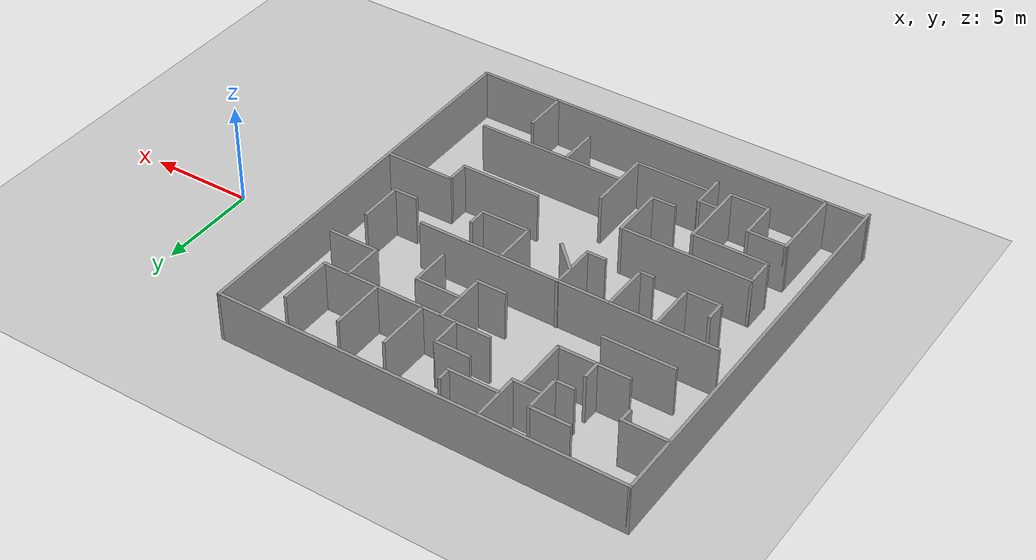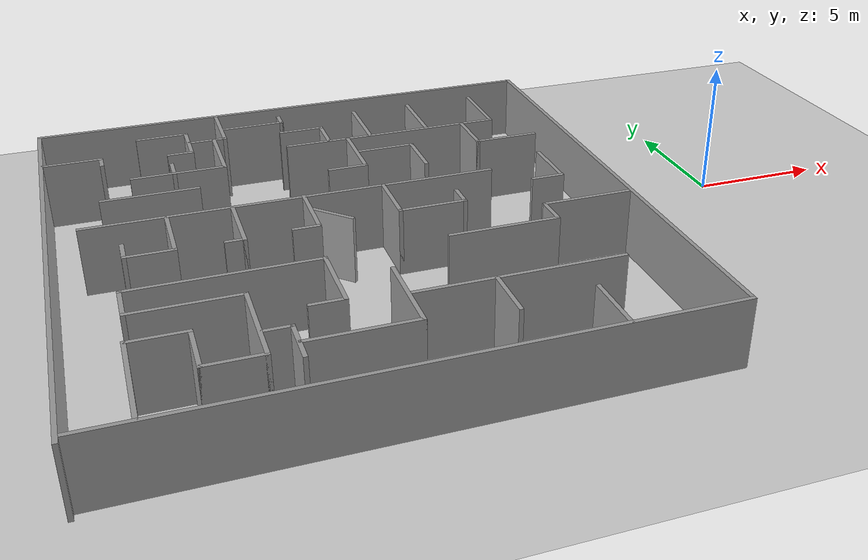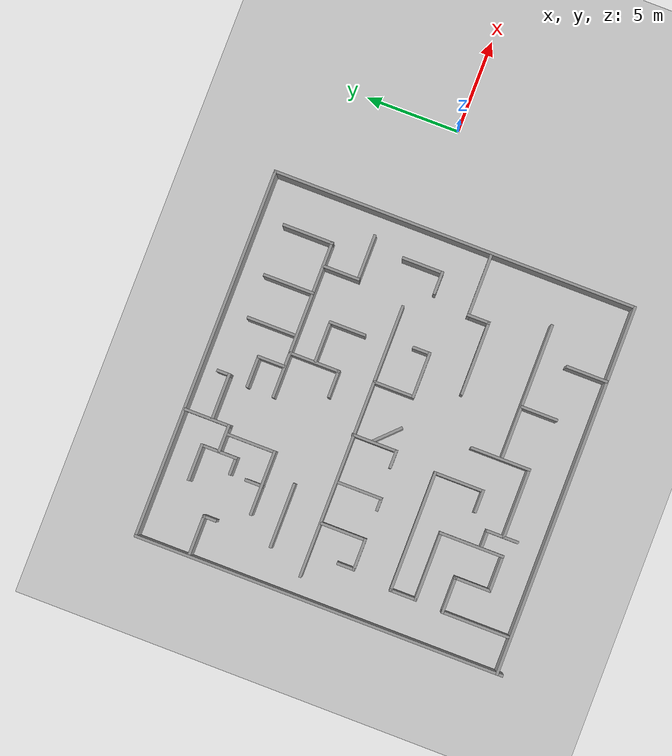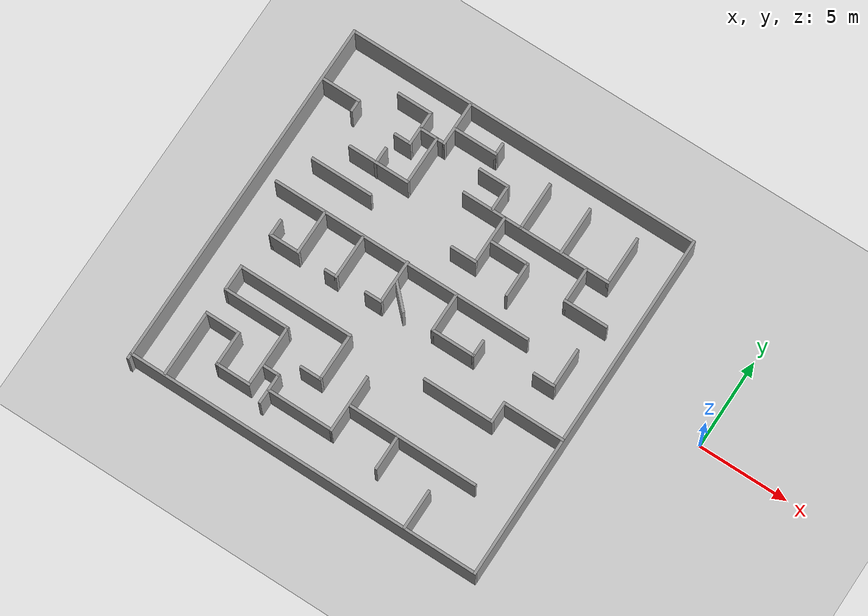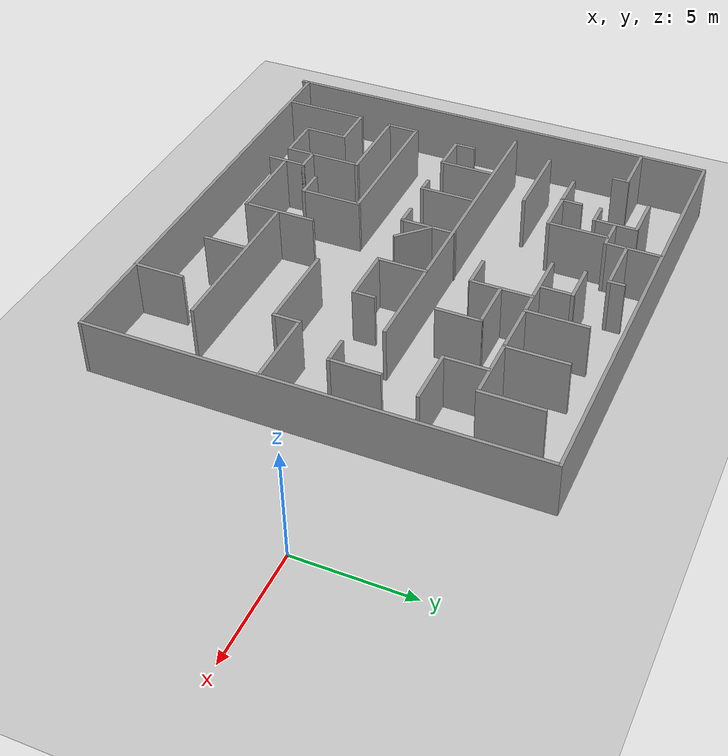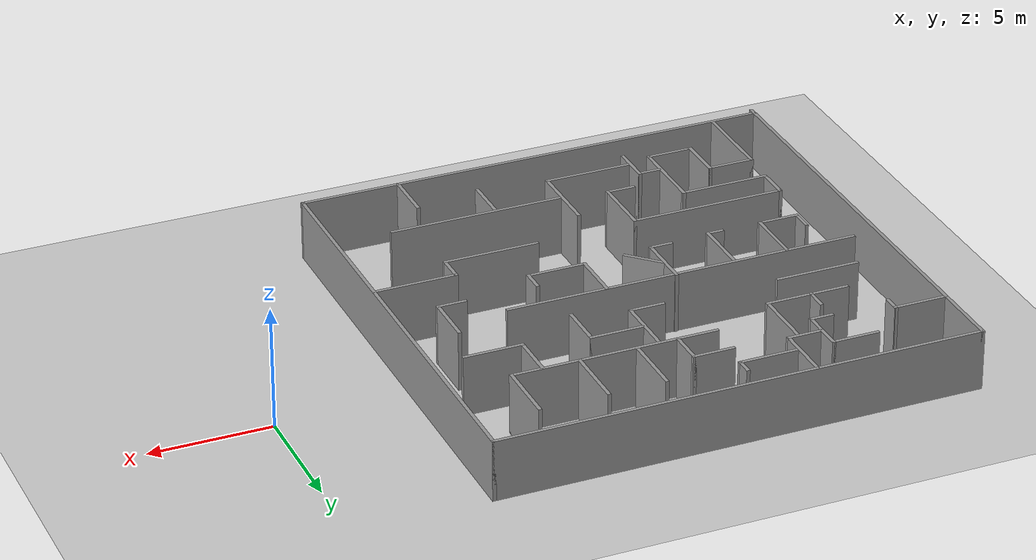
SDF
<?xml version='1.0'?>
<sdf version='1.6'>
<world name="my_map">
    <!-- A global light source -->
    <include>
      <uri>model://sun</uri>
    </include>
    <!-- A ground plane -->
    <include>
      <uri>model://ground_plane</uri>
    </include>
  <model name='maze_world2'>
    <pose frame=''>-15.4294 -1.99033 0 0 -0 0</pose>
    <link name='Wall_0'>
      <collision name='Wall_0_Collision'>
        <geometry>
          <box>
            <size>20 0.15 2.5</size>
          </box>
        </geometry>
        <pose frame=''>0 0 1.25 0 -0 0</pose>
      </collision>
      <visual name='Wall_0_Visual'>
        <pose frame=''>0 0 1.25 0 -0 0</pose>
        <geometry>
          <box>
            <size>20 0.15 2.5</size>
          </box>
        </geometry>
        <material>
          <script>
            <uri>file://media/materials/scripts/gazebo.material</uri>
            <name>Gazebo/Grey</name>
          </script>
          <ambient>1 1 1 1</ambient>
        </material>
        <meta>
          <layer>0</layer>
        </meta>
      </visual>
      <pose frame=''>-9.925 0 0 0 -0 1.5708</pose>
    </link>
    <link name='Wall_1'>
      <collision name='Wall_1_Collision'>
        <geometry>
          <box>
            <size>20 0.15 2.5</size>
          </box>
        </geometry>
        <pose frame=''>0 0 1.25 0 -0 0</pose>
      </collision>
      <visual name='Wall_1_Visual'>
        <pose frame=''>0 0 1.25 0 -0 0</pose>
        <geometry>
          <box>
            <size>20 0.15 2.5</size>
          </box>
        </geometry>
        <material>
          <script>
            <uri>file://media/materials/scripts/gazebo.material</uri>
            <name>Gazebo/Grey</name>
          </script>
          <ambient>1 1 1 1</ambient>
        </material>
        <meta>
          <layer>0</layer>
        </meta>
      </visual>
      <pose frame=''>-1e-06 9.925 0 0 -0 0</pose>
    </link>
    <link name='Wall_10'>
      <collision name='Wall_10_Collision'>
        <geometry>
          <box>
            <size>2 0.15 2.5</size>
          </box>
        </geometry>
        <pose frame=''>0 0 1.25 0 -0 0</pose>
      </collision>
      <visual name='Wall_10_Visual'>
        <pose frame=''>0 0 1.25 0 -0 0</pose>
        <geometry>
          <box>
            <size>2 0.15 2.5</size>
          </box>
        </geometry>
        <material>
          <script>
            <uri>file://media/materials/scripts/gazebo.material</uri>
            <name>Gazebo/Grey</name>
          </script>
          <ambient>1 1 1 1</ambient>
        </material>
        <meta>
          <layer>0</layer>
        </meta>
      </visual>
      <pose frame=''>-5.36071 8.42989 0 0 -0 0</pose>
    </link>
    <link name='Wall_100'>
      <collision name='Wall_100_Collision'>
        <geometry>
          <box>
            <size>2.25 0.15 2.5</size>
          </box>
        </geometry>
        <pose frame=''>0 0 1.25 0 -0 0</pose>
      </collision>
      <visual name='Wall_100_Visual'>
        <pose frame=''>0 0 1.25 0 -0 0</pose>
        <geometry>
          <box>
            <size>2.25 0.15 2.5</size>
          </box>
        </geometry>
        <material>
          <script>
            <uri>file://media/materials/scripts/gazebo.material</uri>
            <name>Gazebo/Grey</name>
          </script>
          <ambient>1 1 1 1</ambient>
        </material>
        <meta>
          <layer>0</layer>
        </meta>
      </visual>
      <pose frame=''>-8.81778 7.04252 0 0 -0 0</pose>
    </link>
    <link name='Wall_101'>
      <collision name='Wall_101_Collision'>
        <geometry>
          <box>
            <size>0.75 0.15 2.5</size>
          </box>
        </geometry>
        <pose frame=''>0 0 1.25 0 -0 0</pose>
      </collision>
      <visual name='Wall_101_Visual'>
        <pose frame=''>0 0 1.25 0 -0 0</pose>
        <geometry>
          <box>
            <size>0.75 0.15 2.5</size>
          </box>
        </geometry>
        <material>
          <script>
            <uri>file://media/materials/scripts/gazebo.material</uri>
            <name>Gazebo/Grey</name>
          </script>
          <ambient>1 1 1 1</ambient>
        </material>
        <meta>
          <layer>0</layer>
        </meta>
      </visual>
      <pose frame=''>-7.76778 6.74252 0 0 -0 -1.5708</pose>
    </link>
    <link name='Wall_11'>
      <collision name='Wall_11_Collision'>
        <geometry>
          <box>
            <size>2 0.15 2.5</size>
          </box>
        </geometry>
        <pose frame=''>0 0 1.25 0 -0 0</pose>
      </collision>
      <visual name='Wall_11_Visual'>
        <pose frame=''>0 0 1.25 0 -0 0</pose>
        <geometry>
          <box>
            <size>2 0.15 2.5</size>
          </box>
        </geometry>
        <material>
          <script>
            <uri>file://media/materials/scripts/gazebo.material</uri>
            <name>Gazebo/Grey</name>
          </script>
          <ambient>1 1 1 1</ambient>
        </material>
        <meta>
          <layer>0</layer>
        </meta>
      </visual>
      <pose frame=''>-4.43571 7.50489 0 0 -0 -1.5708</pose>
    </link>
    <link name='Wall_12'>
      <collision name='Wall_12_Collision'>
        <geometry>
          <box>
            <size>1 0.15 2.5</size>
          </box>
        </geometry>
        <pose frame=''>0 0 1.25 0 -0 0</pose>
      </collision>
      <visual name='Wall_12_Visual'>
        <pose frame=''>0 0 1.25 0 -0 0</pose>
        <geometry>
          <box>
            <size>1 0.15 2.5</size>
          </box>
        </geometry>
        <material>
          <script>
            <uri>file://media/materials/scripts/gazebo.material</uri>
            <name>Gazebo/Grey</name>
          </script>
          <ambient>1 1 1 1</ambient>
        </material>
        <meta>
          <layer>0</layer>
        </meta>
      </visual>
      <pose frame=''>-4.86071 6.57989 0 0 -0 3.14159</pose>
    </link>
    <link name='Wall_14'>
      <collision name='Wall_14_Collision'>
        <geometry>
          <box>
            <size>1.5 0.15 2.5</size>
          </box>
        </geometry>
        <pose frame=''>0 0 1.25 0 -0 0</pose>
      </collision>
      <visual name='Wall_14_Visual'>
        <pose frame=''>0 0 1.25 0 -0 0</pose>
        <geometry>
          <box>
            <size>1.5 0.15 2.5</size>
          </box>
        </geometry>
        <material>
          <script>
            <uri>file://media/materials/scripts/gazebo.material</uri>
            <name>Gazebo/Grey</name>
          </script>
          <ambient>1 1 1 1</ambient>
        </material>
        <meta>
          <layer>0</layer>
        </meta>
      </visual>
      <pose frame=''>-3.70961 7.50216 0 0 -0 0</pose>
    </link>
    <link name='Wall_15'>
      <collision name='Wall_15_Collision'>
        <geometry>
          <box>
            <size>2.5 0.15 2.5</size>
          </box>
        </geometry>
        <pose frame=''>0 0 1.25 0 -0 0</pose>
      </collision>
      <visual name='Wall_15_Visual'>
        <pose frame=''>0 0 1.25 0 -0 0</pose>
        <geometry>
          <box>
            <size>2.5 0.15 2.5</size>
          </box>
        </geometry>
        <material>
          <script>
            <uri>file://media/materials/scripts/gazebo.material</uri>
            <name>Gazebo/Grey</name>
          </script>
          <ambient>1 1 1 1</ambient>
        </material>
        <meta>
          <layer>0</layer>
        </meta>
      </visual>
      <pose frame=''>-3.03462 8.67716 0 0 -0 1.5708</pose>
    </link>
    <link name='Wall_17'>
      <collision name='Wall_17_Collision'>
        <geometry>
          <box>
            <size>2.5 0.15 2.5</size>
          </box>
        </geometry>
        <pose frame=''>0 0 1.25 0 -0 0</pose>
      </collision>
      <visual name='Wall_17_Visual'>
        <pose frame=''>0 0 1.25 0 -0 0</pose>
        <geometry>
          <box>
            <size>2.5 0.15 2.5</size>
          </box>
        </geometry>
        <material>
          <script>
            <uri>file://media/materials/scripts/gazebo.material</uri>
            <name>Gazebo/Grey</name>
          </script>
          <ambient>1 1 1 1</ambient>
        </material>
        <meta>
          <layer>0</layer>
        </meta>
      </visual>
      <pose frame=''>-1.77999 8.41468 0 0 -0 0</pose>
    </link>
    <link name='Wall_18'>
      <collision name='Wall_18_Collision'>
        <geometry>
          <box>
            <size>0.75 0.15 2.5</size>
          </box>
        </geometry>
        <pose frame=''>0 0 1.25 0 -0 0</pose>
      </collision>
      <visual name='Wall_18_Visual'>
        <pose frame=''>0 0 1.25 0 -0 0</pose>
        <geometry>
          <box>
            <size>0.75 0.15 2.5</size>
          </box>
        </geometry>
        <material>
          <script>
            <uri>file://media/materials/scripts/gazebo.material</uri>
            <name>Gazebo/Grey</name>
          </script>
          <ambient>1 1 1 1</ambient>
        </material>
        <meta>
          <layer>0</layer>
        </meta>
      </visual>
      <pose frame=''>-0.604993 8.71468 0 0 -0 1.5708</pose>
    </link>
    <link name='Wall_2'>
      <collision name='Wall_2_Collision'>
        <geometry>
          <box>
            <size>19.75 0.15 2.5</size>
          </box>
        </geometry>
        <pose frame=''>0 0 1.25 0 -0 0</pose>
      </collision>
      <visual name='Wall_2_Visual'>
        <pose frame=''>0 0 1.25 0 -0 0</pose>
        <geometry>
          <box>
            <size>19.75 0.15 2.5</size>
          </box>
        </geometry>
        <material>
          <script>
            <uri>file://media/materials/scripts/gazebo.material</uri>
            <name>Gazebo/Grey</name>
          </script>
          <ambient>1 1 1 1</ambient>
        </material>
        <meta>
          <layer>0</layer>
        </meta>
      </visual>
      <pose frame=''>9.925 0.125 0 0 -0 -1.5708</pose>
    </link>
    <link name='Wall_20'>
      <collision name='Wall_20_Collision'>
        <geometry>
          <box>
            <size>2.75 0.15 2.5</size>
          </box>
        </geometry>
        <pose frame=''>0 0 1.25 0 -0 0</pose>
      </collision>
      <visual name='Wall_20_Visual'>
        <pose frame=''>0 0 1.25 0 -0 0</pose>
        <geometry>
          <box>
            <size>2.75 0.15 2.5</size>
          </box>
        </geometry>
        <material>
          <script>
            <uri>file://media/materials/scripts/gazebo.material</uri>
            <name>Gazebo/Grey</name>
          </script>
          <ambient>1 1 1 1</ambient>
        </material>
        <meta>
          <layer>0</layer>
        </meta>
      </visual>
      <pose frame=''>-3.45688 6.15653 0 0 -0 -1.5708</pose>
    </link>
    <link name='Wall_21'>
      <collision name='Wall_21_Collision'>
        <geometry>
          <box>
            <size>3.5 0.15 2.5</size>
          </box>
        </geometry>
        <pose frame=''>0 0 1.25 0 -0 0</pose>
      </collision>
      <visual name='Wall_21_Visual'>
        <pose frame=''>0 0 1.25 0 -0 0</pose>
        <geometry>
          <box>
            <size>3.5 0.15 2.5</size>
          </box>
        </geometry>
        <material>
          <script>
            <uri>file://media/materials/scripts/gazebo.material</uri>
            <name>Gazebo/Grey</name>
          </script>
          <ambient>1 1 1 1</ambient>
        </material>
        <meta>
          <layer>0</layer>
        </meta>
      </visual>
      <pose frame=''>-5.13188 4.85653 0 0 -0 3.14159</pose>
    </link>
    <link name='Wall_23'>
      <collision name='Wall_23_Collision'>
        <geometry>
          <box>
            <size>1 0.15 2.5</size>
          </box>
        </geometry>
        <pose frame=''>0 0 1.25 0 -0 0</pose>
      </collision>
      <visual name='Wall_23_Visual'>
        <pose frame=''>0 0 1.25 0 -0 0</pose>
        <geometry>
          <box>
            <size>1 0.15 2.5</size>
          </box>
        </geometry>
        <material>
          <script>
            <uri>file://media/materials/scripts/gazebo.material</uri>
            <name>Gazebo/Grey</name>
          </script>
          <ambient>1 1 1 1</ambient>
        </material>
        <meta>
          <layer>0</layer>
        </meta>
      </visual>
      <pose frame=''>-5.29714 5.26732 0 0 -0 -1.5708</pose>
    </link>
    <link name='Wall_25'>
      <collision name='Wall_25_Collision'>
        <geometry>
          <box>
            <size>8.5 0.15 2.5</size>
          </box>
        </geometry>
        <pose frame=''>0 0 1.25 0 -0 0</pose>
      </collision>
      <visual name='Wall_25_Visual'>
        <pose frame=''>0 0 1.25 0 -0 0</pose>
        <geometry>
          <box>
            <size>8.5 0.15 2.5</size>
          </box>
        </geometry>
        <material>
          <script>
            <uri>file://media/materials/scripts/gazebo.material</uri>
            <name>Gazebo/Grey</name>
          </script>
          <ambient>1 1 1 1</ambient>
        </material>
        <meta>
          <layer>0</layer>
        </meta>
      </visual>
      <pose frame=''>3.34923 5.92045 0 0 -0 0</pose>
    </link>
    <link name='Wall_27'>
      <collision name='Wall_27_Collision'>
        <geometry>
          <box>
            <size>2.75 0.15 2.5</size>
          </box>
        </geometry>
        <pose frame=''>0 0 1.25 0 -0 0</pose>
      </collision>
      <visual name='Wall_27_Visual'>
        <pose frame=''>0 0 1.25 0 -0 0</pose>
        <geometry>
          <box>
            <size>2.75 0.15 2.5</size>
          </box>
        </geometry>
        <material>
          <script>
            <uri>file://media/materials/scripts/gazebo.material</uri>
            <name>Gazebo/Grey</name>
          </script>
          <ambient>1 1 1 1</ambient>
        </material>
        <meta>
          <layer>0</layer>
        </meta>
      </visual>
      <pose frame=''>7.52423 7.22045 0 0 -0 1.5708</pose>
    </link>
    <link name='Wall_29'>
      <collision name='Wall_29_Collision'>
        <geometry>
          <box>
            <size>2.75 0.15 2.5</size>
          </box>
        </geometry>
        <pose frame=''>0 0 1.25 0 -0 0</pose>
      </collision>
      <visual name='Wall_29_Visual'>
        <pose frame=''>0 0 1.25 0 -0 0</pose>
        <geometry>
          <box>
            <size>2.75 0.15 2.5</size>
          </box>
        </geometry>
        <material>
          <script>
            <uri>file://media/materials/scripts/gazebo.material</uri>
            <name>Gazebo/Grey</name>
          </script>
          <ambient>1 1 1 1</ambient>
        </material>
        <meta>
          <layer>0</layer>
        </meta>
      </visual>
      <pose frame=''>4.78626 7.23566 0 0 -0 1.5708</pose>
    </link>
    <link name='Wall_3'>
      <collision name='Wall_3_Collision'>
        <geometry>
          <box>
            <size>20 0.15 2.5</size>
          </box>
        </geometry>
        <pose frame=''>0 0 1.25 0 -0 0</pose>
      </collision>
      <visual name='Wall_3_Visual'>
        <pose frame=''>0 0 1.25 0 -0 0</pose>
        <geometry>
          <box>
            <size>20 0.15 2.5</size>
          </box>
        </geometry>
        <material>
          <script>
            <uri>file://media/materials/scripts/gazebo.material</uri>
            <name>Gazebo/Grey</name>
          </script>
          <ambient>1 1 1 1</ambient>
        </material>
        <meta>
          <layer>0</layer>
        </meta>
      </visual>
      <pose frame=''>-1e-06 -9.675 0 0 -0 3.14159</pose>
    </link>
    <link name='Wall_31'>
      <collision name='Wall_31_Collision'>
        <geometry>
          <box>
            <size>2.75 0.15 2.5</size>
          </box>
        </geometry>
        <pose frame=''>0 0 1.25 0 -0 0</pose>
      </collision>
      <visual name='Wall_31_Visual'>
        <pose frame=''>0 0 1.25 0 -0 0</pose>
        <geometry>
          <box>
            <size>2.75 0.15 2.5</size>
          </box>
        </geometry>
        <material>
          <script>
            <uri>file://media/materials/scripts/gazebo.material</uri>
            <name>Gazebo/Grey</name>
          </script>
          <ambient>1 1 1 1</ambient>
        </material>
        <meta>
          <layer>0</layer>
        </meta>
      </visual>
      <pose frame=''>2.45932 7.23566 0 0 -0 1.5708</pose>
    </link>
    <link name='Wall_33'>
      <collision name='Wall_33_Collision'>
        <geometry>
          <box>
            <size>1.5 0.15 2.5</size>
          </box>
        </geometry>
        <pose frame=''>0 0 1.25 0 -0 0</pose>
      </collision>
      <visual name='Wall_33_Visual'>
        <pose frame=''>0 0 1.25 0 -0 0</pose>
        <geometry>
          <box>
            <size>1.5 0.15 2.5</size>
          </box>
        </geometry>
        <material>
          <script>
            <uri>file://media/materials/scripts/gazebo.material</uri>
            <name>Gazebo/Grey</name>
          </script>
          <ambient>1 1 1 1</ambient>
        </material>
        <meta>
          <layer>0</layer>
        </meta>
      </visual>
      <pose frame=''>0.78636 6.67149 0 0 -0 1.5708</pose>
    </link>
    <link name='Wall_34'>
      <collision name='Wall_34_Collision'>
        <geometry>
          <box>
            <size>1.75 0.15 2.5</size>
          </box>
        </geometry>
        <pose frame=''>0 0 1.25 0 -0 0</pose>
      </collision>
      <visual name='Wall_34_Visual'>
        <pose frame=''>0 0 1.25 0 -0 0</pose>
        <geometry>
          <box>
            <size>1.75 0.15 2.5</size>
          </box>
        </geometry>
        <material>
          <script>
            <uri>file://media/materials/scripts/gazebo.material</uri>
            <name>Gazebo/Grey</name>
          </script>
          <ambient>1 1 1 1</ambient>
        </material>
        <meta>
          <layer>0</layer>
        </meta>
      </visual>
      <pose frame=''>-0.01364 7.34649 0 0 -0 3.14159</pose>
    </link>
    <link name='Wall_36'>
      <collision name='Wall_36_Collision'>
        <geometry>
          <box>
            <size>2 0.15 2.5</size>
          </box>
        </geometry>
        <pose frame=''>0 0 1.25 0 -0 0</pose>
      </collision>
      <visual name='Wall_36_Visual'>
        <pose frame=''>0 0 1.25 0 -0 0</pose>
        <geometry>
          <box>
            <size>2 0.15 2.5</size>
          </box>
        </geometry>
        <material>
          <script>
            <uri>file://media/materials/scripts/gazebo.material</uri>
            <name>Gazebo/Grey</name>
          </script>
          <ambient>1 1 1 1</ambient>
        </material>
        <meta>
          <layer>0</layer>
        </meta>
      </visual>
      <pose frame=''>6.27672 4.93461 0 0 -0 -1.5708</pose>
    </link>
    <link name='Wall_37'>
      <collision name='Wall_37_Collision'>
        <geometry>
          <box>
            <size>2.5 0.15 2.5</size>
          </box>
        </geometry>
        <pose frame=''>0 0 1.25 0 -0 0</pose>
      </collision>
      <visual name='Wall_37_Visual'>
        <pose frame=''>0 0 1.25 0 -0 0</pose>
        <geometry>
          <box>
            <size>2.5 0.15 2.5</size>
          </box>
        </geometry>
        <material>
          <script>
            <uri>file://media/materials/scripts/gazebo.material</uri>
            <name>Gazebo/Grey</name>
          </script>
          <ambient>1 1 1 1</ambient>
        </material>
        <meta>
          <layer>0</layer>
        </meta>
      </visual>
      <pose frame=''>7.45172 4.00961 0 0 -0 0</pose>
    </link>
    <link name='Wall_39'>
      <collision name='Wall_39_Collision'>
        <geometry>
          <box>
            <size>14.75 0.15 2.5</size>
          </box>
        </geometry>
        <pose frame=''>0 0 1.25 0 -0 0</pose>
      </collision>
      <visual name='Wall_39_Visual'>
        <pose frame=''>0 0 1.25 0 -0 0</pose>
        <geometry>
          <box>
            <size>14.75 0.15 2.5</size>
          </box>
        </geometry>
        <material>
          <script>
            <uri>file://media/materials/scripts/gazebo.material</uri>
            <name>Gazebo/Grey</name>
          </script>
          <ambient>1 1 1 1</ambient>
        </material>
        <meta>
          <layer>0</layer>
        </meta>
      </visual>
      <pose frame=''>-1.54778 1.39288 0 0 -0 0</pose>
    </link>
    <link name='Wall_41'>
      <collision name='Wall_41_Collision'>
        <geometry>
          <box>
            <size>2.5 0.15 2.5</size>
          </box>
        </geometry>
        <pose frame=''>0 0 1.25 0 -0 0</pose>
      </collision>
      <visual name='Wall_41_Visual'>
        <pose frame=''>0 0 1.25 0 -0 0</pose>
        <geometry>
          <box>
            <size>2.5 0.15 2.5</size>
          </box>
        </geometry>
        <material>
          <script>
            <uri>file://media/materials/scripts/gazebo.material</uri>
            <name>Gazebo/Grey</name>
          </script>
          <ambient>1 1 1 1</ambient>
        </material>
        <meta>
          <layer>0</layer>
        </meta>
      </visual>
      <pose frame=''>-5.98401 0.147531 0 0 -0 -1.5708</pose>
    </link>
    <link name='Wall_42'>
      <collision name='Wall_42_Collision'>
        <geometry>
          <box>
            <size>1.75 0.15 2.5</size>
          </box>
        </geometry>
        <pose frame=''>0 0 1.25 0 -0 0</pose>
      </collision>
      <visual name='Wall_42_Visual'>
        <pose frame=''>0 0 1.25 0 -0 0</pose>
        <geometry>
          <box>
            <size>1.75 0.15 2.5</size>
          </box>
        </geometry>
        <material>
          <script>
            <uri>file://media/materials/scripts/gazebo.material</uri>
            <name>Gazebo/Grey</name>
          </script>
          <ambient>1 1 1 1</ambient>
        </material>
        <meta>
          <layer>0</layer>
        </meta>
      </visual>
      <pose frame=''>-6.78401 -1.02747 0 0 -0 3.14159</pose>
    </link>
    <link name='Wall_43'>
      <collision name='Wall_43_Collision'>
        <geometry>
          <box>
            <size>1 0.15 2.5</size>
          </box>
        </geometry>
        <pose frame=''>0 0 1.25 0 -0 0</pose>
      </collision>
      <visual name='Wall_43_Visual'>
        <pose frame=''>0 0 1.25 0 -0 0</pose>
        <geometry>
          <box>
            <size>1 0.15 2.5</size>
          </box>
        </geometry>
        <material>
          <script>
            <uri>file://media/materials/scripts/gazebo.material</uri>
            <name>Gazebo/Grey</name>
          </script>
          <ambient>1 1 1 1</ambient>
        </material>
        <meta>
          <layer>0</layer>
        </meta>
      </visual>
      <pose frame=''>-7.58401 -0.602469 0 0 -0 1.5708</pose>
    </link>
    <link name='Wall_45'>
      <collision name='Wall_45_Collision'>
        <geometry>
          <box>
            <size>2.5 0.15 2.5</size>
          </box>
        </geometry>
        <pose frame=''>0 0 1.25 0 -0 0</pose>
      </collision>
      <visual name='Wall_45_Visual'>
        <pose frame=''>0 0 1.25 0 -0 0</pose>
        <geometry>
          <box>
            <size>2.5 0.15 2.5</size>
          </box>
        </geometry>
        <material>
          <script>
            <uri>file://media/materials/scripts/gazebo.material</uri>
            <name>Gazebo/Grey</name>
          </script>
          <ambient>1 1 1 1</ambient>
        </material>
        <meta>
          <layer>0</layer>
        </meta>
      </visual>
      <pose frame=''>-3.74034 0.1244 0 0 -0 -1.5708</pose>
    </link>
    <link name='Wall_46'>
      <collision name='Wall_46_Collision'>
        <geometry>
          <box>
            <size>0.75 0.15 2.5</size>
          </box>
        </geometry>
        <pose frame=''>0 0 1.25 0 -0 0</pose>
      </collision>
      <visual name='Wall_46_Visual'>
        <pose frame=''>0 0 1.25 0 -0 0</pose>
        <geometry>
          <box>
            <size>0.75 0.15 2.5</size>
          </box>
        </geometry>
        <material>
          <script>
            <uri>file://media/materials/scripts/gazebo.material</uri>
            <name>Gazebo/Grey</name>
          </script>
          <ambient>1 1 1 1</ambient>
        </material>
        <meta>
          <layer>0</layer>
        </meta>
      </visual>
      <pose frame=''>-4.04034 -1.0506 0 0 -0 3.14159</pose>
    </link>
    <link name='Wall_48'>
      <collision name='Wall_48_Collision'>
        <geometry>
          <box>
            <size>2.5 0.15 2.5</size>
          </box>
        </geometry>
        <pose frame=''>0 0 1.25 0 -0 0</pose>
      </collision>
      <visual name='Wall_48_Visual'>
        <pose frame=''>0 0 1.25 0 -0 0</pose>
        <geometry>
          <box>
            <size>2.5 0.15 2.5</size>
          </box>
        </geometry>
        <material>
          <script>
            <uri>file://media/materials/scripts/gazebo.material</uri>
            <name>Gazebo/Grey</name>
          </script>
          <ambient>1 1 1 1</ambient>
        </material>
        <meta>
          <layer>0</layer>
        </meta>
      </visual>
      <pose frame=''>-1.21911 0.263184 0 0 -0 -1.5708</pose>
    </link>
    <link name='Wall_49'>
      <collision name='Wall_49_Collision'>
        <geometry>
          <box>
            <size>1 0.15 2.5</size>
          </box>
        </geometry>
        <pose frame=''>0 0 1.25 0 -0 0</pose>
      </collision>
      <visual name='Wall_49_Visual'>
        <pose frame=''>0 0 1.25 0 -0 0</pose>
        <geometry>
          <box>
            <size>1 0.15 2.5</size>
          </box>
        </geometry>
        <material>
          <script>
            <uri>file://media/materials/scripts/gazebo.material</uri>
            <name>Gazebo/Grey</name>
          </script>
          <ambient>1 1 1 1</ambient>
        </material>
        <meta>
          <layer>0</layer>
        </meta>
      </visual>
      <pose frame=''>-1.64411 -0.911816 0 0 -0 3.14159</pose>
    </link>
    <link name='Wall_51'>
      <collision name='Wall_51_Collision'>
        <geometry>
          <box>
            <size>2.25 0.15 2.5</size>
          </box>
        </geometry>
        <pose frame=''>0 0 1.25 0 -0 0</pose>
      </collision>
      <visual name='Wall_51_Visual'>
        <pose frame=''>0 0 1.25 0 -0 0</pose>
        <geometry>
          <box>
            <size>2.25 0.15 2.5</size>
          </box>
        </geometry>
        <material>
          <script>
            <uri>file://media/materials/scripts/gazebo.material</uri>
            <name>Gazebo/Grey</name>
          </script>
          <ambient>1 1 1 1</ambient>
        </material>
        <meta>
          <layer>0</layer>
        </meta>
      </visual>
      <pose frame=''>1.67222 0.318792 0 0 -0 -1.5708</pose>
    </link>
    <link name='Wall_52'>
      <collision name='Wall_52_Collision'>
        <geometry>
          <box>
            <size>2.5 0.15 2.5</size>
          </box>
        </geometry>
        <pose frame=''>0 0 1.25 0 -0 0</pose>
      </collision>
      <visual name='Wall_52_Visual'>
        <pose frame=''>0 0 1.25 0 -0 0</pose>
        <geometry>
          <box>
            <size>2.5 0.15 2.5</size>
          </box>
        </geometry>
        <material>
          <script>
            <uri>file://media/materials/scripts/gazebo.material</uri>
            <name>Gazebo/Grey</name>
          </script>
          <ambient>1 1 1 1</ambient>
        </material>
        <meta>
          <layer>0</layer>
        </meta>
      </visual>
      <pose frame=''>2.84722 -0.731208 0 0 -0 0</pose>
    </link>
    <link name='Wall_53'>
      <collision name='Wall_53_Collision'>
        <geometry>
          <box>
            <size>1 0.15 2.5</size>
          </box>
        </geometry>
        <pose frame=''>0 0 1.25 0 -0 0</pose>
      </collision>
      <visual name='Wall_53_Visual'>
        <pose frame=''>0 0 1.25 0 -0 0</pose>
        <geometry>
          <box>
            <size>1 0.15 2.5</size>
          </box>
        </geometry>
        <material>
          <script>
            <uri>file://media/materials/scripts/gazebo.material</uri>
            <name>Gazebo/Grey</name>
          </script>
          <ambient>1 1 1 1</ambient>
        </material>
        <meta>
          <layer>0</layer>
        </meta>
      </visual>
      <pose frame=''>4.02222 -0.306208 0 0 -0 1.5708</pose>
    </link>
    <link name='Wall_55'>
      <collision name='Wall_55_Collision'>
        <geometry>
          <box>
            <size>1.75 0.15 2.5</size>
          </box>
        </geometry>
        <pose frame=''>0 0 1.25 0 -0 0</pose>
      </collision>
      <visual name='Wall_55_Visual'>
        <pose frame=''>0 0 1.25 0 -0 0</pose>
        <geometry>
          <box>
            <size>1.75 0.15 2.5</size>
          </box>
        </geometry>
        <material>
          <script>
            <uri>file://media/materials/scripts/gazebo.material</uri>
            <name>Gazebo/Grey</name>
          </script>
          <ambient>1 1 1 1</ambient>
        </material>
        <meta>
          <layer>0</layer>
        </meta>
      </visual>
      <pose frame=''>-0.607161 -0.168379 0 0 -0 -0.785398</pose>
    </link>
    <link name='Wall_62'>
      <collision name='Wall_62_Collision'>
        <geometry>
          <box>
            <size>3.75 0.15 2.5</size>
          </box>
        </geometry>
        <pose frame=''>0 0 1.25 0 -0 0</pose>
      </collision>
      <visual name='Wall_62_Visual'>
        <pose frame=''>0 0 1.25 0 -0 0</pose>
        <geometry>
          <box>
            <size>3.75 0.15 2.5</size>
          </box>
        </geometry>
        <material>
          <script>
            <uri>file://media/materials/scripts/gazebo.material</uri>
            <name>Gazebo/Grey</name>
          </script>
          <ambient>1 1 1 1</ambient>
        </material>
        <meta>
          <layer>0</layer>
        </meta>
      </visual>
      <pose frame=''>-7.99637 -7.79512 0 0 -0 1.5708</pose>
    </link>
    <link name='Wall_63'>
      <collision name='Wall_63_Collision'>
        <geometry>
          <box>
            <size>2 0.15 2.5</size>
          </box>
        </geometry>
        <pose frame=''>0 0 1.25 0 -0 0</pose>
      </collision>
      <visual name='Wall_63_Visual'>
        <pose frame=''>0 0 1.25 0 -0 0</pose>
        <geometry>
          <box>
            <size>2 0.15 2.5</size>
          </box>
        </geometry>
        <material>
          <script>
            <uri>file://media/materials/scripts/gazebo.material</uri>
            <name>Gazebo/Grey</name>
          </script>
          <ambient>1 1 1 1</ambient>
        </material>
        <meta>
          <layer>0</layer>
        </meta>
      </visual>
      <pose frame=''>-7.07138 -5.99512 0 0 -0 0</pose>
    </link>
    <link name='Wall_64'>
      <collision name='Wall_64_Collision'>
        <geometry>
          <box>
            <size>2 0.15 2.5</size>
          </box>
        </geometry>
        <pose frame=''>0 0 1.25 0 -0 0</pose>
      </collision>
      <visual name='Wall_64_Visual'>
        <pose frame=''>0 0 1.25 0 -0 0</pose>
        <geometry>
          <box>
            <size>2 0.15 2.5</size>
          </box>
        </geometry>
        <material>
          <script>
            <uri>file://media/materials/scripts/gazebo.material</uri>
            <name>Gazebo/Grey</name>
          </script>
          <ambient>1 1 1 1</ambient>
        </material>
        <meta>
          <layer>0</layer>
        </meta>
      </visual>
      <pose frame=''>-6.14638 -6.92012 0 0 -0 -1.5708</pose>
    </link>
    <link name='Wall_65'>
      <collision name='Wall_65_Collision'>
        <geometry>
          <box>
            <size>2 0.15 2.5</size>
          </box>
        </geometry>
        <pose frame=''>0 0 1.25 0 -0 0</pose>
      </collision>
      <visual name='Wall_65_Visual'>
        <pose frame=''>0 0 1.25 0 -0 0</pose>
        <geometry>
          <box>
            <size>2 0.15 2.5</size>
          </box>
        </geometry>
        <material>
          <script>
            <uri>file://media/materials/scripts/gazebo.material</uri>
            <name>Gazebo/Grey</name>
          </script>
          <ambient>1 1 1 1</ambient>
        </material>
        <meta>
          <layer>0</layer>
        </meta>
      </visual>
      <pose frame=''>-5.22138 -7.84512 0 0 -0 0</pose>
    </link>
    <link name='Wall_66'>
      <collision name='Wall_66_Collision'>
        <geometry>
          <box>
            <size>3.5 0.15 2.5</size>
          </box>
        </geometry>
        <pose frame=''>0 0 1.25 0 -0 0</pose>
      </collision>
      <visual name='Wall_66_Visual'>
        <pose frame=''>0 0 1.25 0 -0 0</pose>
        <geometry>
          <box>
            <size>3.5 0.15 2.5</size>
          </box>
        </geometry>
        <material>
          <script>
            <uri>file://media/materials/scripts/gazebo.material</uri>
            <name>Gazebo/Grey</name>
          </script>
          <ambient>1 1 1 1</ambient>
        </material>
        <meta>
          <layer>0</layer>
        </meta>
      </visual>
      <pose frame=''>-4.29638 -6.17012 0 0 -0 1.5708</pose>
    </link>
    <link name='Wall_67'>
      <collision name='Wall_67_Collision'>
        <geometry>
          <box>
            <size>3.75 0.15 2.5</size>
          </box>
        </geometry>
        <pose frame=''>0 0 1.25 0 -0 0</pose>
      </collision>
      <visual name='Wall_67_Visual'>
        <pose frame=''>0 0 1.25 0 -0 0</pose>
        <geometry>
          <box>
            <size>3.75 0.15 2.5</size>
          </box>
        </geometry>
        <material>
          <script>
            <uri>file://media/materials/scripts/gazebo.material</uri>
            <name>Gazebo/Grey</name>
          </script>
          <ambient>1 1 1 1</ambient>
        </material>
        <meta>
          <layer>0</layer>
        </meta>
      </visual>
      <pose frame=''>-6.09638 -4.49512 0 0 -0 3.14159</pose>
    </link>
    <link name='Wall_68'>
      <collision name='Wall_68_Collision'>
        <geometry>
          <box>
            <size>1.5 0.15 2.5</size>
          </box>
        </geometry>
        <pose frame=''>0 0 1.25 0 -0 0</pose>
      </collision>
      <visual name='Wall_68_Visual'>
        <pose frame=''>0 0 1.25 0 -0 0</pose>
        <geometry>
          <box>
            <size>1.5 0.15 2.5</size>
          </box>
        </geometry>
        <material>
          <script>
            <uri>file://media/materials/scripts/gazebo.material</uri>
            <name>Gazebo/Grey</name>
          </script>
          <ambient>1 1 1 1</ambient>
        </material>
        <meta>
          <layer>0</layer>
        </meta>
      </visual>
      <pose frame=''>-7.89638 -3.82012 0 0 -0 1.5708</pose>
    </link>
    <link name='Wall_69'>
      <collision name='Wall_69_Collision'>
        <geometry>
          <box>
            <size>6.5 0.15 2.5</size>
          </box>
        </geometry>
        <pose frame=''>0 0 1.25 0 -0 0</pose>
      </collision>
      <visual name='Wall_69_Visual'>
        <pose frame=''>0 0 1.25 0 -0 0</pose>
        <geometry>
          <box>
            <size>6.5 0.15 2.5</size>
          </box>
        </geometry>
        <material>
          <script>
            <uri>file://media/materials/scripts/gazebo.material</uri>
            <name>Gazebo/Grey</name>
          </script>
          <ambient>1 1 1 1</ambient>
        </material>
        <meta>
          <layer>0</layer>
        </meta>
      </visual>
      <pose frame=''>-4.72138 -3.14512 0 0 -0 0</pose>
    </link>
    <link name='Wall_70'>
      <collision name='Wall_70_Collision'>
        <geometry>
          <box>
            <size>2.75 0.15 2.5</size>
          </box>
        </geometry>
        <pose frame=''>0 0 1.25 0 -0 0</pose>
      </collision>
      <visual name='Wall_70_Visual'>
        <pose frame=''>0 0 1.25 0 -0 0</pose>
        <geometry>
          <box>
            <size>2.75 0.15 2.5</size>
          </box>
        </geometry>
        <material>
          <script>
            <uri>file://media/materials/scripts/gazebo.material</uri>
            <name>Gazebo/Grey</name>
          </script>
          <ambient>1 1 1 1</ambient>
        </material>
        <meta>
          <layer>0</layer>
        </meta>
      </visual>
      <pose frame=''>-1.54638 -4.44512 0 0 -0 -1.5708</pose>
    </link>
    <link name='Wall_71'>
      <collision name='Wall_71_Collision'>
        <geometry>
          <box>
            <size>1.25 0.15 2.5</size>
          </box>
        </geometry>
        <pose frame=''>0 0 1.25 0 -0 0</pose>
      </collision>
      <visual name='Wall_71_Visual'>
        <pose frame=''>0 0 1.25 0 -0 0</pose>
        <geometry>
          <box>
            <size>1.25 0.15 2.5</size>
          </box>
        </geometry>
        <material>
          <script>
            <uri>file://media/materials/scripts/gazebo.material</uri>
            <name>Gazebo/Grey</name>
          </script>
          <ambient>1 1 1 1</ambient>
        </material>
        <meta>
          <layer>0</layer>
        </meta>
      </visual>
      <pose frame=''>-2.09638 -5.74512 0 0 -0 3.14159</pose>
    </link>
    <link name='Wall_73'>
      <collision name='Wall_73_Collision'>
        <geometry>
          <box>
            <size>1 0.15 2.5</size>
          </box>
        </geometry>
        <pose frame=''>0 0 1.25 0 -0 0</pose>
      </collision>
      <visual name='Wall_73_Visual'>
        <pose frame=''>0 0 1.25 0 -0 0</pose>
        <geometry>
          <box>
            <size>1 0.15 2.5</size>
          </box>
        </geometry>
        <material>
          <script>
            <uri>file://media/materials/scripts/gazebo.material</uri>
            <name>Gazebo/Grey</name>
          </script>
          <ambient>1 1 1 1</ambient>
        </material>
        <meta>
          <layer>0</layer>
        </meta>
      </visual>
      <pose frame=''>-3.77796 -6.68066 0 0 -0 0</pose>
    </link>
    <link name='Wall_74'>
      <collision name='Wall_74_Collision'>
        <geometry>
          <box>
            <size>1.75 0.15 2.5</size>
          </box>
        </geometry>
        <pose frame=''>0 0 1.25 0 -0 0</pose>
      </collision>
      <visual name='Wall_74_Visual'>
        <pose frame=''>0 0 1.25 0 -0 0</pose>
        <geometry>
          <box>
            <size>1.75 0.15 2.5</size>
          </box>
        </geometry>
        <material>
          <script>
            <uri>file://media/materials/scripts/gazebo.material</uri>
            <name>Gazebo/Grey</name>
          </script>
          <ambient>1 1 1 1</ambient>
        </material>
        <meta>
          <layer>0</layer>
        </meta>
      </visual>
      <pose frame=''>-3.35296 -7.48066 0 0 -0 -1.5708</pose>
    </link>
    <link name='Wall_76'>
      <collision name='Wall_76_Collision'>
        <geometry>
          <box>
            <size>3.75 0.15 2.5</size>
          </box>
        </geometry>
        <pose frame=''>0 0 1.25 0 -0 0</pose>
      </collision>
      <visual name='Wall_76_Visual'>
        <pose frame=''>0 0 1.25 0 -0 0</pose>
        <geometry>
          <box>
            <size>3.75 0.15 2.5</size>
          </box>
        </geometry>
        <material>
          <script>
            <uri>file://media/materials/scripts/gazebo.material</uri>
            <name>Gazebo/Grey</name>
          </script>
          <ambient>1 1 1 1</ambient>
        </material>
        <meta>
          <layer>0</layer>
        </meta>
      </visual>
      <pose frame=''>-1.50086 -7.55962 0 0 -0 0</pose>
    </link>
    <link name='Wall_77'>
      <collision name='Wall_77_Collision'>
        <geometry>
          <box>
            <size>3.25 0.15 2.5</size>
          </box>
        </geometry>
        <pose frame=''>0 0 1.25 0 -0 0</pose>
      </collision>
      <visual name='Wall_77_Visual'>
        <pose frame=''>0 0 1.25 0 -0 0</pose>
        <geometry>
          <box>
            <size>3.25 0.15 2.5</size>
          </box>
        </geometry>
        <material>
          <script>
            <uri>file://media/materials/scripts/gazebo.material</uri>
            <name>Gazebo/Grey</name>
          </script>
          <ambient>1 1 1 1</ambient>
        </material>
        <meta>
          <layer>0</layer>
        </meta>
      </visual>
      <pose frame=''>0.299137 -6.00962 0 0 -0 1.5708</pose>
    </link>
    <link name='Wall_79'>
      <collision name='Wall_79_Collision'>
        <geometry>
          <box>
            <size>7.25 0.15 2.5</size>
          </box>
        </geometry>
        <pose frame=''>0 0 1.25 0 -0 0</pose>
      </collision>
      <visual name='Wall_79_Visual'>
        <pose frame=''>0 0 1.25 0 -0 0</pose>
        <geometry>
          <box>
            <size>7.25 0.15 2.5</size>
          </box>
        </geometry>
        <material>
          <script>
            <uri>file://media/materials/scripts/gazebo.material</uri>
            <name>Gazebo/Grey</name>
          </script>
          <ambient>1 1 1 1</ambient>
        </material>
        <meta>
          <layer>0</layer>
        </meta>
      </visual>
      <pose frame=''>3.9963 -6.05613 0 0 -0 0</pose>
    </link>
    <link name='Wall_81'>
      <collision name='Wall_81_Collision'>
        <geometry>
          <box>
            <size>2 0.15 2.5</size>
          </box>
        </geometry>
        <pose frame=''>0 0 1.25 0 -0 0</pose>
      </collision>
      <visual name='Wall_81_Visual'>
        <pose frame=''>0 0 1.25 0 -0 0</pose>
        <geometry>
          <box>
            <size>2 0.15 2.5</size>
          </box>
        </geometry>
        <material>
          <script>
            <uri>file://media/materials/scripts/gazebo.material</uri>
            <name>Gazebo/Grey</name>
          </script>
          <ambient>1 1 1 1</ambient>
        </material>
        <meta>
          <layer>0</layer>
        </meta>
      </visual>
      <pose frame=''>3.15258 -7.02739 0 0 -0 -1.5708</pose>
    </link>
    <link name='Wall_83'>
      <collision name='Wall_83_Collision'>
        <geometry>
          <box>
            <size>2.25 0.15 2.5</size>
          </box>
        </geometry>
        <pose frame=''>0 0 1.25 0 -0 0</pose>
      </collision>
      <visual name='Wall_83_Visual'>
        <pose frame=''>0 0 1.25 0 -0 0</pose>
        <geometry>
          <box>
            <size>2.25 0.15 2.5</size>
          </box>
        </geometry>
        <material>
          <script>
            <uri>file://media/materials/scripts/gazebo.material</uri>
            <name>Gazebo/Grey</name>
          </script>
          <ambient>1 1 1 1</ambient>
        </material>
        <meta>
          <layer>0</layer>
        </meta>
      </visual>
      <pose frame=''>5.88199 -8.59138 0 0 -0 1.5708</pose>
    </link>
    <link name='Wall_85'>
      <collision name='Wall_85_Collision'>
        <geometry>
          <box>
            <size>3.5 0.15 2.5</size>
          </box>
        </geometry>
        <pose frame=''>0 0 1.25 0 -0 0</pose>
      </collision>
      <visual name='Wall_85_Visual'>
        <pose frame=''>0 0 1.25 0 -0 0</pose>
        <geometry>
          <box>
            <size>3.5 0.15 2.5</size>
          </box>
        </geometry>
        <material>
          <script>
            <uri>file://media/materials/scripts/gazebo.material</uri>
            <name>Gazebo/Grey</name>
          </script>
          <ambient>1 1 1 1</ambient>
        </material>
        <meta>
          <layer>0</layer>
        </meta>
      </visual>
      <pose frame=''>8.23171 -1.89262 0 0 -0 3.14159</pose>
    </link>
    <link name='Wall_86'>
      <collision name='Wall_86_Collision'>
        <geometry>
          <box>
            <size>1.25 0.15 2.5</size>
          </box>
        </geometry>
        <pose frame=''>0 0 1.25 0 -0 0</pose>
      </collision>
      <visual name='Wall_86_Visual'>
        <pose frame=''>0 0 1.25 0 -0 0</pose>
        <geometry>
          <box>
            <size>1.25 0.15 2.5</size>
          </box>
        </geometry>
        <material>
          <script>
            <uri>file://media/materials/scripts/gazebo.material</uri>
            <name>Gazebo/Grey</name>
          </script>
          <ambient>1 1 1 1</ambient>
        </material>
        <meta>
          <layer>0</layer>
        </meta>
      </visual>
      <pose frame=''>6.55671 -2.44262 0 0 -0 -1.5708</pose>
    </link>
    <link name='Wall_87'>
      <collision name='Wall_87_Collision'>
        <geometry>
          <box>
            <size>4 0.15 2.5</size>
          </box>
        </geometry>
        <pose frame=''>0 0 1.25 0 -0 0</pose>
      </collision>
      <visual name='Wall_87_Visual'>
        <pose frame=''>0 0 1.25 0 -0 0</pose>
        <geometry>
          <box>
            <size>4 0.15 2.5</size>
          </box>
        </geometry>
        <material>
          <script>
            <uri>file://media/materials/scripts/gazebo.material</uri>
            <name>Gazebo/Grey</name>
          </script>
          <ambient>1 1 1 1</ambient>
        </material>
        <meta>
          <layer>0</layer>
        </meta>
      </visual>
      <pose frame=''>4.63171 -2.99262 0 0 -0 3.14159</pose>
    </link>
    <link name='Wall_89'>
      <collision name='Wall_89_Collision'>
        <geometry>
          <box>
            <size>2.25 0.15 2.5</size>
          </box>
        </geometry>
        <pose frame=''>0 0 1.25 0 -0 0</pose>
      </collision>
      <visual name='Wall_89_Visual'>
        <pose frame=''>0 0 1.25 0 -0 0</pose>
        <geometry>
          <box>
            <size>2.25 0.15 2.5</size>
          </box>
        </geometry>
        <material>
          <script>
            <uri>file://media/materials/scripts/gazebo.material</uri>
            <name>Gazebo/Grey</name>
          </script>
          <ambient>1 1 1 1</ambient>
        </material>
        <meta>
          <layer>0</layer>
        </meta>
      </visual>
      <pose frame=''>8.10253 1.17463 0 0 -0 -1.5708</pose>
    </link>
    <link name='Wall_90'>
      <collision name='Wall_90_Collision'>
        <geometry>
          <box>
            <size>1.25 0.15 2.5</size>
          </box>
        </geometry>
        <pose frame=''>0 0 1.25 0 -0 0</pose>
      </collision>
      <visual name='Wall_90_Visual'>
        <pose frame=''>0 0 1.25 0 -0 0</pose>
        <geometry>
          <box>
            <size>1.25 0.15 2.5</size>
          </box>
        </geometry>
        <material>
          <script>
            <uri>file://media/materials/scripts/gazebo.material</uri>
            <name>Gazebo/Grey</name>
          </script>
          <ambient>1 1 1 1</ambient>
        </material>
        <meta>
          <layer>0</layer>
        </meta>
      </visual>
      <pose frame=''>7.55253 0.124624 0 0 -0 3.14159</pose>
    </link>
    <link name='Wall_92'>
      <collision name='Wall_92_Collision'>
        <geometry>
          <box>
            <size>3.5 0.15 2.5</size>
          </box>
        </geometry>
        <pose frame=''>0 0 1.25 0 -0 0</pose>
      </collision>
      <visual name='Wall_92_Visual'>
        <pose frame=''>0 0 1.25 0 -0 0</pose>
        <geometry>
          <box>
            <size>3.5 0.15 2.5</size>
          </box>
        </geometry>
        <material>
          <script>
            <uri>file://media/materials/scripts/gazebo.material</uri>
            <name>Gazebo/Grey</name>
          </script>
          <ambient>1 1 1 1</ambient>
        </material>
        <meta>
          <layer>0</layer>
        </meta>
      </visual>
      <pose frame=''>-6.32138 3.33489 0 0 -0 0</pose>
    </link>
    <link name='Wall_94'>
      <collision name='Wall_94_Collision'>
        <geometry>
          <box>
            <size>2.75 0.15 2.5</size>
          </box>
        </geometry>
        <pose frame=''>0 0 1.25 0 -0 0</pose>
      </collision>
      <visual name='Wall_94_Visual'>
        <pose frame=''>0 0 1.25 0 -0 0</pose>
        <geometry>
          <box>
            <size>2.75 0.15 2.5</size>
          </box>
        </geometry>
        <material>
          <script>
            <uri>file://media/materials/scripts/gazebo.material</uri>
            <name>Gazebo/Grey</name>
          </script>
          <ambient>1 1 1 1</ambient>
        </material>
        <meta>
          <layer>0</layer>
        </meta>
      </visual>
      <pose frame=''>1.53344 4.57926 0 0 -0 -1.5708</pose>
    </link>
    <link name='Wall_95'>
      <collision name='Wall_95_Collision'>
        <geometry>
          <box>
            <size>1.5 0.15 2.5</size>
          </box>
        </geometry>
        <pose frame=''>0 0 1.25 0 -0 0</pose>
      </collision>
      <visual name='Wall_95_Visual'>
        <pose frame=''>0 0 1.25 0 -0 0</pose>
        <geometry>
          <box>
            <size>1.5 0.15 2.5</size>
          </box>
        </geometry>
        <material>
          <script>
            <uri>file://media/materials/scripts/gazebo.material</uri>
            <name>Gazebo/Grey</name>
          </script>
          <ambient>1 1 1 1</ambient>
        </material>
        <meta>
          <layer>0</layer>
        </meta>
      </visual>
      <pose frame=''>0.858435 3.27926 0 0 -0 3.14159</pose>
    </link>
    <link name='Wall_97'>
      <collision name='Wall_97_Collision'>
        <geometry>
          <box>
            <size>2.25 0.15 2.5</size>
          </box>
        </geometry>
        <pose frame=''>0 0 1.25 0 -0 0</pose>
      </collision>
      <visual name='Wall_97_Visual'>
        <pose frame=''>0 0 1.25 0 -0 0</pose>
        <geometry>
          <box>
            <size>2.25 0.15 2.5</size>
          </box>
        </geometry>
        <material>
          <script>
            <uri>file://media/materials/scripts/gazebo.material</uri>
            <name>Gazebo/Grey</name>
          </script>
          <ambient>1 1 1 1</ambient>
        </material>
        <meta>
          <layer>0</layer>
        </meta>
      </visual>
      <pose frame=''>2.67596 4.56082 0 0 -0 0</pose>
    </link>
    <link name='Wall_98'>
      <collision name='Wall_98_Collision'>
        <geometry>
          <box>
            <size>2 0.15 2.5</size>
          </box>
        </geometry>
        <pose frame=''>0 0 1.25 0 -0 0</pose>
      </collision>
      <visual name='Wall_98_Visual'>
        <pose frame=''>0 0 1.25 0 -0 0</pose>
        <geometry>
          <box>
            <size>2 0.15 2.5</size>
          </box>
        </geometry>
        <material>
          <script>
            <uri>file://media/materials/scripts/gazebo.material</uri>
            <name>Gazebo/Grey</name>
          </script>
          <ambient>1 1 1 1</ambient>
        </material>
        <meta>
          <layer>0</layer>
        </meta>
      </visual>
      <pose frame=''>3.72596 3.63582 0 0 -0 -1.5708</pose>
    </link>
    <static>1</static>
  </model>
</world>
</sdf>
